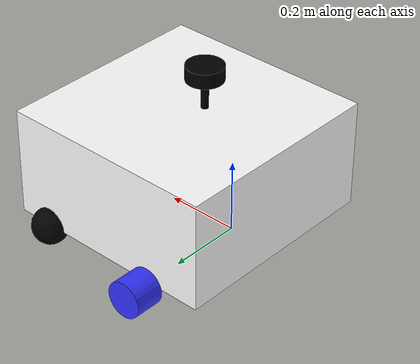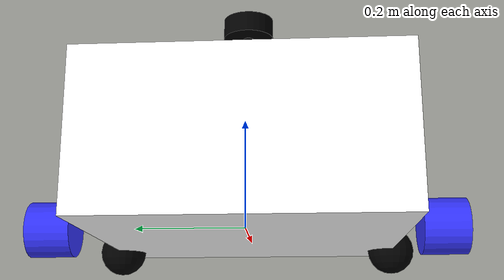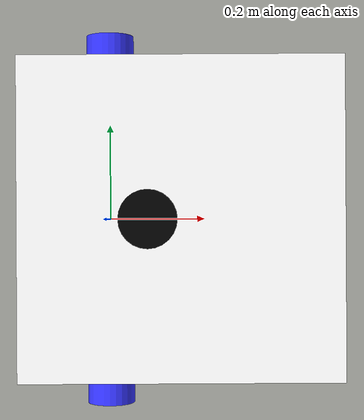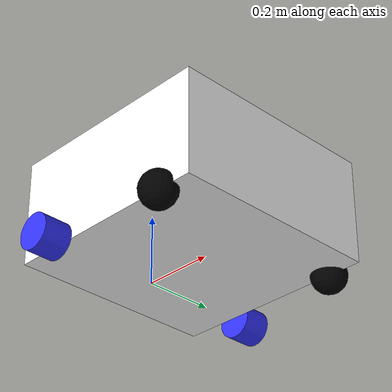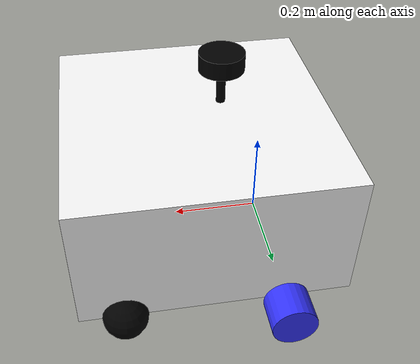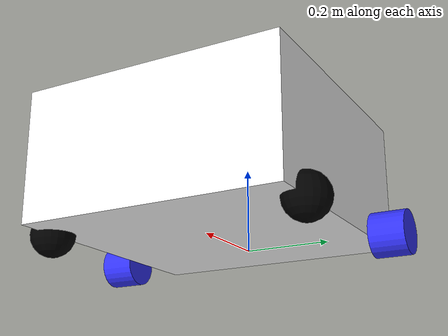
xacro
<?xml version="1.0"?>
<robot xmlns:xacro="http://www.ros.org/wiki/xacro"  name="learn_one">

    <xacro:arg name="use_ros2_control" default="true"/>

    <xacro:include filename="robot_core.xacro" />

    <xacro:if value="$(arg use_ros2_control)">
        <xacro:include filename="ros2_control.xacro"/>
    </xacro:if>

    <xacro:unless value="$(arg use_ros2_control)">
        <xacro:include filename="gazebo_control.xacro"/>
    </xacro:unless>

    <xacro:include filename="lidar.xacro"/>

</robot>

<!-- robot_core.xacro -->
<robot xmlns:xacro="http://www.ros.org/wiki/xacro" >

    <xacro:include filename="inertial_macros.xacro"/>

    <material name="white">
        <color rgba="1 1 1 1" />
    </material>

    <material name="orange">
        <color rgba="1 0.3 0.1 1" />
    </material>

    <material name="blue">
        <color rgba="0.2 0.2 1 1" />
    </material>

    <material name="black">
        <color rgba="0 0 0 1" />
    </material>

    <material name="red">
        <color rgba="1 0 0 1" />
    </material>

    <!--  Base Link  -->

    <link name="base_link">

    </link>

    <!-- BASE_FOOTPRINT LINK -->

    <joint name="base_footprint_joint" type="fixed">
        <parent link="base_link"/>
        <child link="base_footprint"/>
        <origin xyz="0 0 0" rpy="0 0 0"/>
    </joint>

    <link name="base_footprint">
    </link>

    <!--  Chassis Link  -->

    <joint name="chassis_joint" type="fixed">
        <parent link="base_link"/>
        <child link="chassis"/>
        <origin xyz="-0.15 0 0"/>
    </joint>

    <link name="chassis">
        <visual>
            <origin xyz="0.3 0 0.15"/>
            <geometry>
                <box size="0.6 0.6 0.3"/>
            </geometry>
            <material name="white"/>
        </visual>
        <collision>
            <origin xyz="0.3 0 0.15"/>
            <geometry>
                <box size="0.6 0.6 0.3"/>
            </geometry>
        </collision>
        <xacro:inertial_box mass="1" x="0.6" y="0.6" z="0.3">
            <origin xyz="0.3 0 0.15" rpy="0 0 0"/>
        </xacro:inertial_box>
    </link>

    <gazebo reference="chassis">
        <material>Gazebo/White</material>
    </gazebo>

    <!--  Left Wheel Link  -->

    <joint name="left_wheel_joint" type="continuous">
        <parent link="base_link"/>
        <child link="left_wheel"/>
        <origin xyz="0 0.35 0" rpy="-${pi/2} 0 0"/>
        <axis xyz="0 0 1"/>
    </joint>

    <link name="left_wheel">
        <visual>
            <geometry>
                <cylinder radius="0.05" length="0.08"/>
            </geometry>
            <material name="blue"/>
        </visual>
        <collision>
            <geometry>
                <sphere radius="0.05"/>
            </geometry>
        </collision>
        <xacro:inertial_cylinder mass="0.1" length="0.08" radius="0.05">
            <origin xyz="0 0 0" rpy="0 0 0"/>
        </xacro:inertial_cylinder>
    </link>

    <gazebo reference="left_wheel">
        <material>Gazebo/Blue</material>
    </gazebo>

    <!--  Right Wheel Link  -->

    <joint name="right_wheel_joint" type="continuous">
        <parent link="base_link"/>
        <child link="right_wheel"/>
        <origin xyz="0 -0.35 0" rpy="${pi/2} 0 0"/>
        <axis xyz="0 0 -1"/>
    </joint>

    <link name="right_wheel">
        <visual>
            <geometry>
                <cylinder radius="0.05" length="0.08"/>
            </geometry>
            <material name="blue"/>
        </visual>
        <collision>
            <geometry>
                <sphere radius="0.05"/>
            </geometry>
        </collision>
        <xacro:inertial_cylinder mass="0.1" length="0.08" radius="0.05">
            <origin xyz="0 0 0" rpy="0 0 0"/>
        </xacro:inertial_cylinder>
    </link>

    <gazebo reference="right_wheel">
        <material>Gazebo/Blue</material>

    </gazebo>

    <!--  Left Caster Wheel Link  -->

    <joint name="left_caster_wheel_joint" type="fixed">
        <parent link="chassis"/>
        <child link="left_caster_wheel"/>
        <origin xyz="0.5 -0.3 0"/>
    </joint>

    <link name="left_caster_wheel">
        <visual>
            <geometry>
                <sphere radius="0.05"/>
            </geometry>
            <material name="black"/>
        </visual>
        <collision>
            <geometry>
                <sphere radius="0.05"/>
            </geometry>
        </collision>
        <xacro:inertial_sphere mass="0.15" radius="0.05">
            <origin xyz="0 0 0" rpy="0 0 0"/>
        </xacro:inertial_sphere>
    </link>

    <gazebo reference="left_caster_wheel">
        <material>Gazebo/Black</material>
        <mu1 value="0.001"/>
        <mu2 value="0.001"/>
    </gazebo>

    <!--  Right Caster Wheel Link  -->

    <joint name="right_caster_wheel_joint" type="fixed">
        <parent link="chassis"/>
        <child link="right_caster_wheel"/>
        <origin xyz="0.5 0.3 0"/>
    </joint>

    <link name="right_caster_wheel">
        <visual>
            <geometry>
                <sphere radius="0.05"/>
            </geometry>
            <material name="black"/>
        </visual>
        <collision>
            <geometry>
                <sphere radius="0.05"/>
            </geometry>
        </collision>
        <xacro:inertial_sphere mass="0.15" radius="0.05">
            <origin xyz="0 0 0" rpy="0 0 0"/>
        </xacro:inertial_sphere>
    </link>

    <gazebo reference="right_caster_wheel">
        <material>Gazebo/Black</material>
        <mu1 value="0.001"/>
        <mu2 value="0.001"/>
    </gazebo>

</robot>

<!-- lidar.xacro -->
<robot xmlns:xacro="http://www.ros.org/wiki/xacro" >

    <joint name="laser_joint" type="fixed">
        <parent link="chassis"/>
        <child link="laser_frame"/>
        <origin xyz="0.244 0 0.424" rpy="0 0 0"/>
    </joint>

    <link name="laser_frame">
        <visual>
            <geometry>
                <cylinder radius="0.05" length="0.04"/>
            </geometry>
            <material name="black"/>
        </visual>
        <visual>
            <origin xyz="0 0 -0.05"/>
            <geometry>
                <cylinder radius="0.01" length="0.1"/>
            </geometry>
            <material name="black"/>
        </visual>
        <collision>
            <geometry>
                <cylinder radius="0.05" length="0.04"/>
            </geometry>
        </collision>
        <xacro:inertial_cylinder mass="0.1" length="0.04" radius="0.05">
            <origin xyz="0 0 0" rpy="0 0 0"/>
        </xacro:inertial_cylinder>
    </link>

    <gazebo reference="laser_frame">
        <material>Gazebo/Black</material>

        <sensor name="laser" type="ray">
            <pose> 0 0 0 0 0 0 </pose>
            <visualize>false</visualize>
            <update_rate>10</update_rate>
            <ray>
                <scan>
                    <horizontal>
                        <samples>360</samples>
                        <min_angle>-3.14</min_angle>
                        <max_angle>3.14</max_angle>
                    </horizontal>
                </scan>
                <range>
                    <min>0.3</min>
                    <max>12</max>
                </range>
            </ray>
            <plugin name="laser_controller" filename="libgazebo_ros_ray_sensor.so">
                <ros>
                    <argument>~/out:=scan</argument>
                </ros>
                <output_type>sensor_msgs/LaserScan</output_type>
                <frame_name>laser_frame</frame_name>
            </plugin>
        </sensor>
    </gazebo>

</robot>
